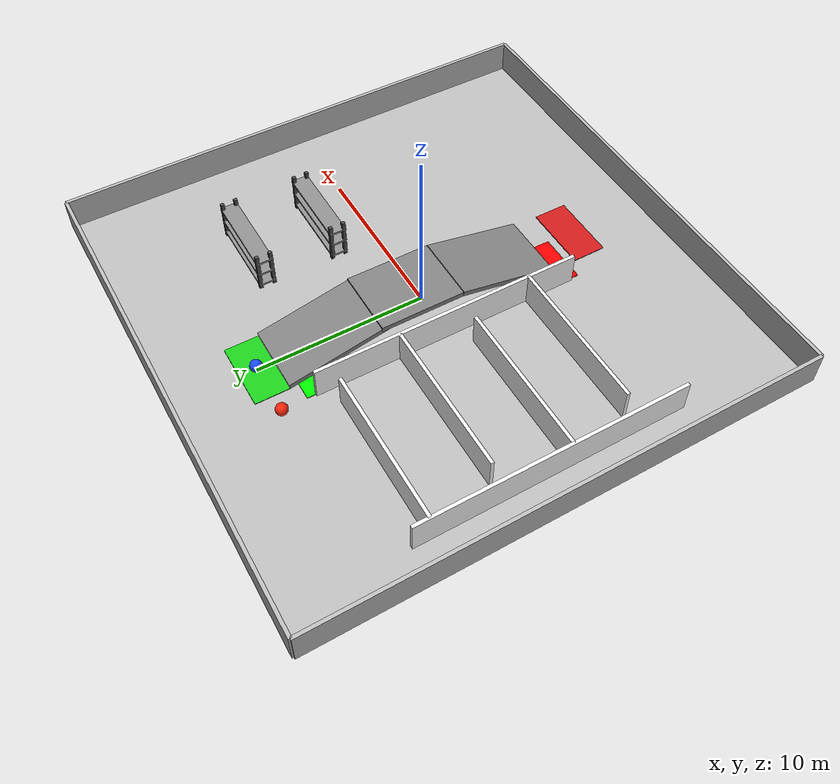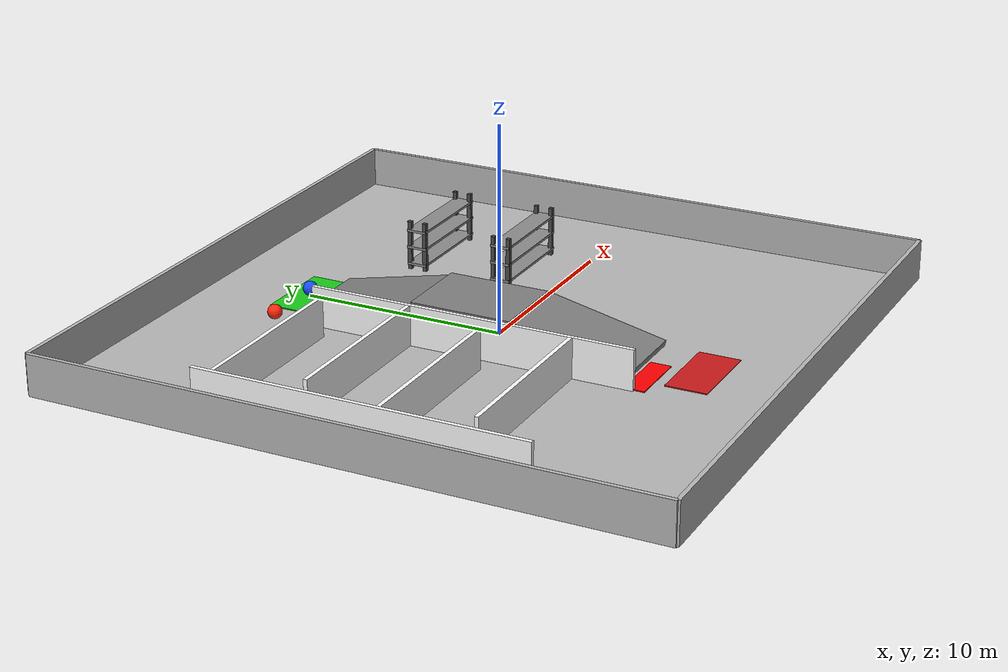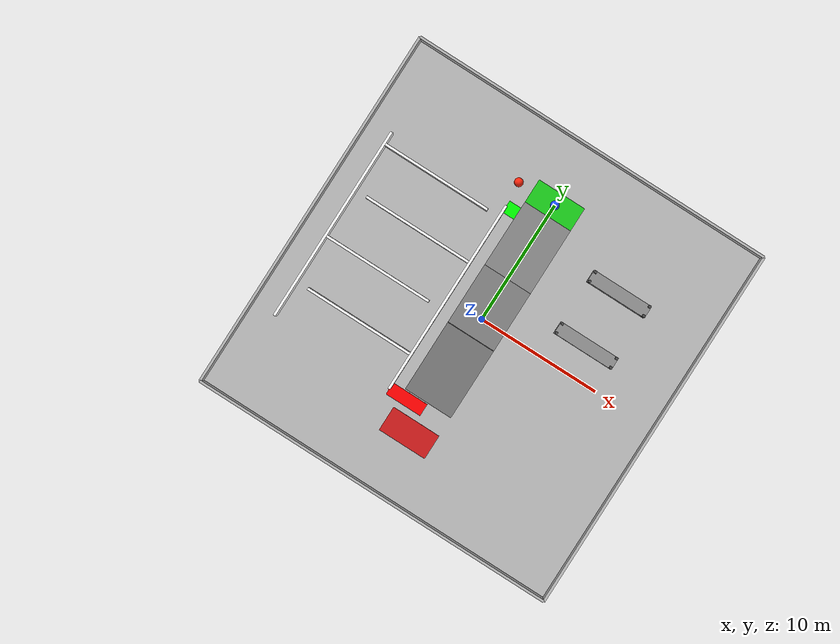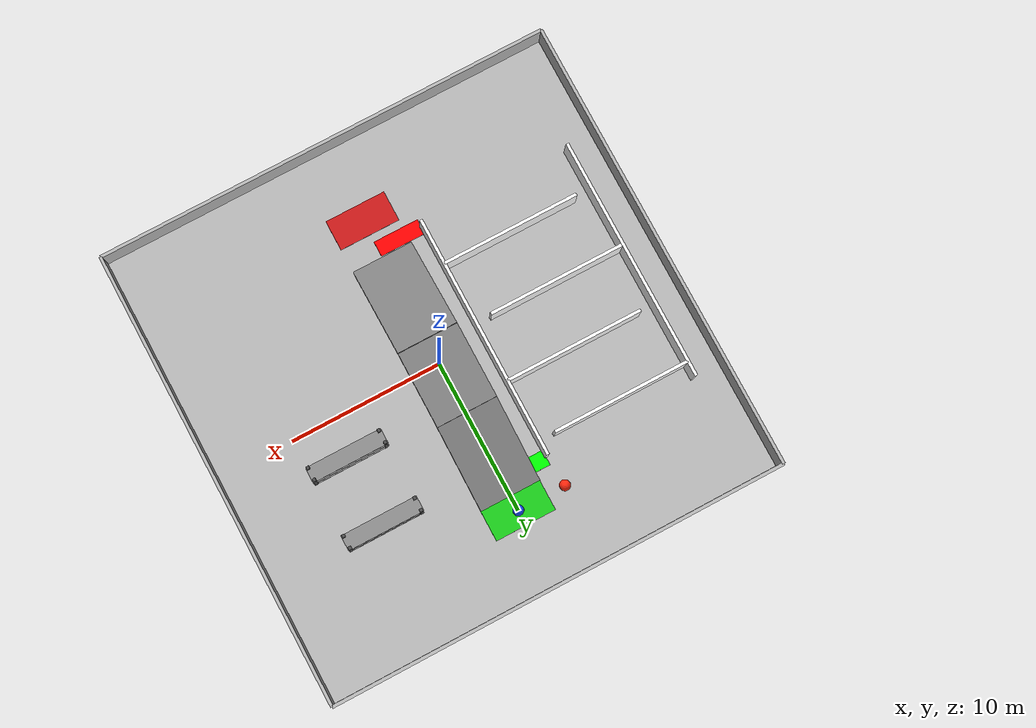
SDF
<?xml version="1.0" ?>
<sdf version="1.9">
  <world name="arena_30x30">

    <!-- Physics -->
    <physics name="1ms" type="ignored">
      <max_step_size>0.001</max_step_size>
      <real_time_factor>1</real_time_factor>
      <real_time_update_rate>1000</real_time_update_rate>
    </physics>

    <!-- Lighting -->
    <light name="sun" type="directional">
      <cast_shadows>true</cast_shadows>
      <pose>0 0 20 0 0 0</pose>
      <diffuse>0.8 0.8 0.8 1</diffuse>
      <specular>0.2 0.2 0.2 1</specular>
      <direction>-0.5 0.5 -1</direction>
    </light>

    <!-- Ground -->
    <model name="ground">
      <static>true</static>
      <link name="link">

        <collision name="collision">
          <geometry>
            <box>
              <size>30 30 0.1</size>
            </box>
          </geometry>
        </collision>

        <visual name="visual">
          <geometry>
            <box>
              <size>30 30 0.1</size>
            </box>
          </geometry>
        </visual>

      </link>
    </model>

    <!-- North wall -->
    <model name="wall_north">
      <static>true</static>
      <pose>0 15 1 0 0 0</pose>
      <link name="link">
        <collision name="collision">
          <geometry>
            <box>
              <size>30 0.2 2</size>
            </box>
          </geometry>
        </collision>
        <visual name="visual">
          <geometry>
            <box>
              <size>30 0.2 2</size>
            </box>
          </geometry>
        </visual>
      </link>
    </model>

    <!-- South wall -->
    <model name="wall_south">
      <static>true</static>
      <pose>0 -15 1 0 0 0</pose>
      <link name="link">
        <collision name="collision">
          <geometry>
            <box>
              <size>30 0.2 2</size>
            </box>
          </geometry>
        </collision>
        <visual name="visual">
          <geometry>
            <box>
              <size>30 0.2 2</size>
            </box>
          </geometry>
        </visual>
      </link>
    </model>

    <!-- East wall -->
    <model name="wall_east">
      <static>true</static>
      <pose>15 0 1 0 0 0</pose>
      <link name="link">
        <collision name="collision">
          <geometry>
            <box>
              <size>0.2 30 2</size>
            </box>
          </geometry>
        </collision>
        <visual name="visual">
          <geometry>
            <box>
              <size>0.2 30 2</size>
            </box>
          </geometry>
        </visual>
      </link>
    </model>

    <!-- West wall -->
    <model name="wall_west">
      <static>true</static>
      <pose>-15 0 1 0 0 0</pose>
      <link name="link">
        <collision name="collision">
          <geometry>
            <box>
              <size>0.2 30 2</size>
            </box>
          </geometry>
        </collision>
        <visual name="visual">
          <geometry>
            <box>
              <size>0.2 30 2</size>
            </box>
          </geometry>
        </visual>
      </link>
    </model>

  <!-- Position and rotation of the ramp -->
<!-- ROUTE 1: DIRECT NORTH → SOUTH 3D RAMP                    -->

<!-- POINT A / NORTH GROUND AREA -->
<model name="route1_point_A">
  <static>true</static>
  <pose>0 10 0.05 0 0 0</pose>

  <link name="link">
    <collision name="collision">
      <geometry>
        <box>
          <size>4.0 2.0 0.1</size>
        </box>
      </geometry>
    </collision>

    <visual name="visual">
      <geometry>
        <box>
          <size>4.0 2.0 0.1</size>
        </box>
      </geometry>
      <material>
        <ambient>0.1 0.8 0.1 1</ambient>
        <diffuse>0.1 0.8 0.1 1</diffuse>
      </material>
    </visual>
  </link>
</model>

<!-- ASCENDING RAMP                                            -->
<!-- NORTH → SOUTH                                             -->

<model name="route1_ascending_ramp">
  <static>true</static>

  <!-- x=0, y=6.5, elevated toward SOUTH -->
  <pose>0 6.0 0.85 -0.21337 0 0</pose>

  <link name="ramp_link">

    <collision name="collision">
      <geometry>
        <box>
          <size>4.0 6.139 0.3</size>
        </box>
      </geometry>
    </collision>

    <visual name="visual">
      <geometry>
        <box>
          <size>4.0 6.139 0.3</size>
        </box>
      </geometry>

      <material>
        <ambient>0.5 0.5 0.5 1</ambient>
        <diffuse>0.5 0.5 0.5 1</diffuse>
        <specular>0.2 0.2 0.2 1</specular>
      </material>
    </visual>

  </link>
</model>

<!-- ELEVATED STRAIGHT SECTION                                 -->

<model name="route1_elevated_platform">
  <static>true</static>

  <pose>0 1.0 1.5 0 0 0</pose>

  <link name="platform_link">

    <collision name="collision">
      <geometry>
        <box>
          <size>4.0 5.0 0.3</size>
        </box>
      </geometry>
    </collision>

    <visual name="visual">
      <geometry>
        <box>
          <size>4.0 5.0 0.3</size>
        </box>
      </geometry>

      <material>
        <ambient>0.5 0.5 0.5 1</ambient>
        <diffuse>0.5 0.5 0.5 1</diffuse>
        <specular>0.2 0.2 0.2 1</specular>
      </material>
    </visual>

  </link>
</model>

<!-- DESCENDING RAMP                                            -->

<model name="route1_descending_ramp">
  <static>true</static>

  <pose>0 -4.43 0.85 0.2187 0 0</pose>

  <link name="ramp_link">

    <collision name="collision">
      <geometry>
        <box>
          <size>4.0 6.0 0.3</size>
        </box>
      </geometry>
    </collision>

    <visual name="visual">
      <geometry>
        <box>
          <size>4.0 6.0 0.3</size>
        </box>
      </geometry>

      <material>
        <ambient>0.5 0.5 0.5 1</ambient>
        <diffuse>0.5 0.5 0.5 1</diffuse>
        <specular>0.2 0.2 0.2 1</specular>
      </material>
    </visual>

  </link>
</model>

<!-- POINT B / SOUTH GROUND AREA                               -->

<model name="route1_point_B">
  <static>true</static>
  <pose>0 -10 0.05 0 0 0</pose>

  <link name="link">

    <collision name="collision">
      <geometry>
        <box>
          <size>4.0 2.0 0.1</size>
        </box>
      </geometry>
    </collision>

    <visual name="visual">
      <geometry>
        <box>
          <size>4.0 2.0 0.1</size>
	</box>
      </geometry>

      <material>
        <ambient>0.8 0.1 0.1 1</ambient>
	<diffuse>0.8 0.1 0.1 1</diffuse>
      </material>
    </visual>

  </link>
</model>

<!-- MOVING BALL - ROUTE 1                                     -->

<model name="moving_ball_route1">
  <static>true</static>

  <pose>0 10 0.40 0 0 0</pose>

  <link name="ball_link">

    <!-- Ball -->
    <visual name="ball_visual">
      <geometry>
        <sphere>
          <radius>0.35</radius>
        </sphere>
      </geometry>

      <material>
        <ambient>0.1 0.3 1.0 1</ambient>
        <diffuse>0.1 0.3 1.0 1</diffuse>
      </material>
    </visual>

    <!-- Visible rolling marker -->
    <visual name="rolling_marker">
      <pose>0 0 0 0 1.5708 0</pose>

      <geometry>
        <cylinder>
          <radius>0.025</radius>
          <length>0.65</length>
        </cylinder>
      </geometry>

      <material>
        <ambient>1 1 1 1</ambient>
        <diffuse>1 1 1 1</diffuse>
      </material>
    </visual>

  </link>
</model>

<!-- ROUTE 2 : ZIG-ZAG GROUND FLOOR PATH                      -->
<!-- Completely flat driving surface: z = 0                   -->
<!-- A -> WEST -> ZIG-ZAG -> EAST -> B                        -->

<!-- GREEN START / NORTH ENTRY                                -->
<!-- Connects A to west-side corridor                         -->

<model name="zigzag_north_entry">
  <static>true</static>
  <pose>-1.5 8.0 0.05 0 0 0</pose>

  <link name="link">

    <collision name="collision">
      <geometry>
        <box>
          <size>3.0 1.0 0.1</size>
        </box>
      </geometry>
    </collision>

    <visual name="visual">
      <geometry>
        <box>
          <size>3.0 1.0 0.1</size>
        </box>
      </geometry>

      <material>
        <ambient>0 1 0 1</ambient>
        <diffuse>0 1 0 1</diffuse>
        <emissive>0 0.2 0 1</emissive>
      </material>
    </visual>

  </link>
</model>

<!-- ROUTE 2 WEST OUTER WALL                                   -->

<model name="zigzag_west_wall">
  <static>true</static>
  <pose>-13.0 0 1.0 0 0 0</pose>

  <link name="link">

    <collision name="collision">
      <geometry>
        <box>
          <size>0.2 16.0 2.0</size>
        </box>
      </geometry>
    </collision>

    <visual name="visual">
      <geometry>
        <box>
          <size>0.2 16.0 2.0</size>
        </box>
      </geometry>

      <material>
        <ambient>1 1 1 1</ambient>
        <diffuse>1 1 1 1</diffuse>
      </material>
    </visual>

  </link>
</model>

<!-- ROUTE 2 EAST OUTER WALL                                   -->

<model name="zigzag_east_wall">
  <static>true</static>
  <pose>-3.0 0 1.0 0 0 0</pose>

  <link name="link">

    <collision name="collision">
      <geometry>
        <box>
          <size>0.2 16.0 2.0</size>
        </box>
      </geometry>
    </collision>

    <visual name="visual">
      <geometry>
        <box>
          <size>0.2 16.0 2.0</size>
        </box>
      </geometry>

      <material>
        <ambient>1 1 1 1</ambient>
        <diffuse>1 1 1 1</diffuse>
      </material>
    </visual>

  </link>
</model>

<!-- BARRIER 1                                                 -->
<!-- GAP ON EAST                                               -->

<model name="zigzag_barrier_1">
  <static>true</static>
  <pose>-8.5 7.0 1.0 0 0 0</pose>

  <link name="link">

    <collision name="collision">
      <geometry>
        <box>
          <size>9.0 0.2 2.0</size>
        </box>
      </geometry>
    </collision>

    <visual name="visual">
      <geometry>
        <box>
          <size>9.0 0.2 2.0</size>
        </box>
      </geometry>

      <material>
        <ambient>1 1 1 1</ambient>
        <diffuse>1 1 1 1</diffuse>
      </material>
    </visual>

  </link>
</model>

<!-- BARRIER 2                                                 -->
<!-- GAP ON WEST                                               -->

<model name="zigzag_barrier_2">
  <static>true</static>
  <pose>-7.5 3.0 1.0 0 0 0</pose>

  <link name="link">

    <collision name="collision">
      <geometry>
        <box>
          <size>9.0 0.2 2.0</size>
        </box>
      </geometry>
    </collision>

    <visual name="visual">
      <geometry>
        <box>
          <size>9.0 0.2 2.0</size>
        </box>
      </geometry>

      <material>
        <ambient>1 1 1 1</ambient>
        <diffuse>1 1 1 1</diffuse>
      </material>
    </visual>

  </link>
</model>

<!-- BARRIER 3                                                 -->
<!-- GAP ON EAST                                               -->

<model name="zigzag_barrier_3">
  <static>true</static>
  <pose>-8.5 -1.0 1.0 0 0 0</pose>

  <link name="link">

    <collision name="collision">
      <geometry>
        <box>
          <size>9.0 0.2 2.0</size>
        </box>
      </geometry>
    </collision>

    <visual name="visual">
      <geometry>
        <box>
          <size>9.0 0.2 2.0</size>
        </box>
      </geometry>

      <material>
        <ambient>1 1 1 1</ambient>
        <diffuse>1 1 1 1</diffuse>
      </material>
    </visual>

  </link>
</model>

<!-- BARRIER 4                                                 -->
<!-- GAP ON WEST                                               -->

<model name="zigzag_barrier_4">
  <static>true</static>
  <pose>-7.5 -5.0 1.0 0 0 0</pose>

  <link name="link">

    <collision name="collision">
      <geometry>
        <box>
          <size>9.0 0.2 2.0</size>
        </box>
      </geometry>
    </collision>

    <visual name="visual">
      <geometry>
        <box>
          <size>9.0 0.2 2.0</size>
        </box>
      </geometry>

      <material>
        <ambient>1 1 1 1</ambient>
        <diffuse>1 1 1 1</diffuse>
      </material>
    </visual>

  </link>
</model>

<!-- SOUTH EXIT                                                -->
<!-- Connects west corridor back to B                         -->
<!-- RED                                                        -->

<model name="zigzag_south_exit">
  <static>true</static>
  <pose>-1.5 -8.0 0.05 0 0 0</pose>

  <link name="link">

    <collision name="collision">
      <geometry>
        <box>
          <size>3.0 1.0 0.1</size>
        </box>
      </geometry>
    </collision>

    <visual name="visual">
      <geometry>
        <box>
          <size>3.0 1.0 0.1</size>
        </box>
      </geometry>

      <material>
        <ambient>1 0 0 1</ambient>
        <diffuse>1 0 0 1</diffuse>
        <emissive>0.2 0 0 1</emissive>
      </material>
    </visual>

  </link>
</model>

<!-- MOVING BALL - ROUTE 2 ZIG-ZAG                            -->

<model name="moving_ball_route2">
  <static>true</static>

  <pose>-3.17 10.0 0.40 0 0 0</pose>

  <link name="ball_link">

    <visual name="ball_visual">
      <geometry>
        <sphere>
          <radius>0.35</radius>
        </sphere>
      </geometry>

      <material>
        <ambient>1.0 0.15 0.05 1</ambient>
        <diffuse>1.0 0.15 0.05 1</diffuse>
      </material>
    </visual>

    <visual name="rolling_marker">
      <pose>0 0 0 0 1.5708 0</pose>

      <geometry>
        <cylinder>
          <radius>0.025</radius>
          <length>0.65</length>
        </cylinder>
      </geometry>

      <material>
        <ambient>1 1 1 1</ambient>
        <diffuse>1 1 1 1</diffuse>
      </material>
    </visual>

  </link>
</model>

<!-- WAREHOUSE STORAGE RACKS                                   -->
<!-- Open industrial-style shelving                            -->

<!-- RACK 1                                                    -->

<model name="warehouse_rack_1">
  <static>true</static>
  <pose>7.5 7.0 0 0 0 0</pose>

  <!-- LEFT FRONT POST -->
  <link name="post_1">
    <pose>-2.35 -0.40 1.25 0 0 0</pose>
    <collision name="collision">
      <geometry>
        <box>
          <size>0.20 0.20 2.50</size>
        </box>
      </geometry>
    </collision>
    <visual name="visual">
      <geometry>
        <box>
          <size>0.20 0.20 2.50</size>
        </box>
      </geometry>
      <material>
        <ambient>0.30 0.30 0.30 1</ambient>
        <diffuse>0.30 0.30 0.30 1</diffuse>
      </material>
    </visual>
  </link>

  <!-- RIGHT FRONT POST -->
  <link name="post_2">
    <pose>2.35 -0.40 1.25 0 0 0</pose>
    <collision name="collision">
      <geometry>
        <box>
          <size>0.20 0.20 2.50</size>
        </box>
      </geometry>
    </collision>
    <visual name="visual">
      <geometry>
        <box>
          <size>0.20 0.20 2.50</size>
        </box>
      </geometry>
      <material>
        <ambient>0.30 0.30 0.30 1</ambient>
        <diffuse>0.30 0.30 0.30 1</diffuse>
      </material>
    </visual>
  </link>

  <!-- LEFT BACK POST -->
  <link name="post_3">
    <pose>-2.35 0.40 1.25 0 0 0</pose>
    <collision name="collision">
      <geometry>
        <box>
          <size>0.20 0.20 2.50</size>
        </box>
      </geometry>
    </collision>
    <visual name="visual">
      <geometry>
        <box>
          <size>0.20 0.20 2.50</size>
        </box>
      </geometry>
      <material>
        <ambient>0.30 0.30 0.30 1</ambient>
        <diffuse>0.30 0.30 0.30 1</diffuse>
      </material>
    </visual>
  </link>

  <!-- RIGHT BACK POST -->
  <link name="post_4">
    <pose>2.35 0.40 1.25 0 0 0</pose>
    <collision name="collision">
      <geometry>
        <box>
          <size>0.20 0.20 2.50</size>
        </box>
      </geometry>
    </collision>
    <visual name="visual">
      <geometry>
        <box>
          <size>0.20 0.20 2.50</size>
        </box>
      </geometry>
      <material>
        <ambient>0.30 0.30 0.30 1</ambient>
        <diffuse>0.30 0.30 0.30 1</diffuse>
      </material>
    </visual>
  </link>

  <!-- LOWER SHELF -->
  <link name="shelf_1">
    <pose>0 0 0.35 0 0 0</pose>
    <collision name="collision">
      <geometry>
        <box>
          <size>5.0 1.0 0.12</size>
        </box>
      </geometry>
    </collision>
    <visual name="visual">
      <geometry>
        <box>
          <size>5.0 1.0 0.12</size>
        </box>
      </geometry>
      <material>
        <ambient>0.55 0.55 0.55 1</ambient>
        <diffuse>0.55 0.55 0.55 1</diffuse>
      </material>
    </visual>
  </link>

  <!-- MIDDLE SHELF -->
  <link name="shelf_2">
    <pose>0 0 1.20 0 0 0</pose>
    <collision name="collision">
      <geometry>
        <box>
          <size>5.0 1.0 0.12</size>
        </box>
      </geometry>
    </collision>
    <visual name="visual">
      <geometry>
        <box>
          <size>5.0 1.0 0.12</size>
        </box>
      </geometry>
      <material>
        <ambient>0.55 0.55 0.55 1</ambient>
        <diffuse>0.55 0.55 0.55 1</diffuse>
      </material>
    </visual>
  </link>

  <!-- UPPER SHELF -->
  <link name="shelf_3">
    <pose>0 0 2.05 0 0 0</pose>
    <collision name="collision">
      <geometry>
        <box>
          <size>5.0 1.0 0.12</size>
        </box>
      </geometry>
    </collision>
    <visual name="visual">
      <geometry>
        <box>
          <size>5.0 1.0 0.12</size>
        </box>
      </geometry>
      <material>
        <ambient>0.55 0.55 0.55 1</ambient>
        <diffuse>0.55 0.55 0.55 1</diffuse>
      </material>
    </visual>
  </link>

</model>

<!-- RACK 2                                                    -->

<model name="warehouse_rack_2">
  <static>true</static>
  <pose>7.5 2.5 0 0 0 0</pose>

  <link name="post_1">
    <pose>-2.35 -0.40 1.25 0 0 0</pose>
    <collision name="collision">
      <geometry><box><size>0.20 0.20 2.50</size></box></geometry>
    </collision>
    <visual name="visual">
      <geometry>
        <box>
          <size>0.20 0.20 2.50</size>
        </box>
      </geometry>
      <material>
        <ambient>0.30 0.30 0.30 1</ambient>
        <diffuse>0.30 0.30 0.30 1</diffuse>
      </material>
    </visual>
  </link>

  <link name="post_2">
    <pose>2.35 -0.40 1.25 0 0 0</pose>
    <collision name="collision">
      <geometry><box><size>0.20 0.20 2.50</size></box></geometry>
    </collision>
    <visual name="visual">
      <geometry>
        <box>
          <size>0.20 0.20 2.50</size>
        </box>
      </geometry>
      <material>
        <ambient>0.30 0.30 0.30 1</ambient>
        <diffuse>0.30 0.30 0.30 1</diffuse>
      </material>
    </visual>
  </link>

  <link name="post_3">
    <pose>-2.35 0.40 1.25 0 0 0</pose>
    <collision name="collision">
      <geometry><box><size>0.20 0.20 2.50</size></box></geometry>
    </collision>
    <visual name="visual">
      <geometry>
        <box>
          <size>0.20 0.20 2.50</size>
        </box>
      </geometry>
      <material>
        <ambient>0.30 0.30 0.30 1</ambient>
        <diffuse>0.30 0.30 0.30 1</diffuse>
      </material>
    </visual>
  </link>

  <link name="post_4">
    <pose>2.35 0.40 1.25 0 0 0</pose>
    <collision name="collision">
      <geometry><box><size>0.20 0.20 2.50</size></box></geometry>
    </collision>
    <visual name="visual">
      <geometry>
        <box>
          <size>0.20 0.20 2.50</size>
        </box>
      </geometry>
      <material>
        <ambient>0.30 0.30 0.30 1</ambient>
        <diffuse>0.30 0.30 0.30 1</diffuse>
      </material>
    </visual>
  </link>

  <link name="shelf_1">
    <pose>0 0 0.35 0 0 0</pose>
    <collision name="collision">
      <geometry><box><size>5.0 1.0 0.12</size></box></geometry>
    </collision>
    <visual name="visual">
      <geometry>
        <box>
          <size>5.0 1.0 0.12</size>
        </box>
      </geometry>
      <material>
        <ambient>0.55 0.55 0.55 1</ambient>
        <diffuse>0.55 0.55 0.55 1</diffuse>
      </material>
    </visual>
  </link>

  <link name="shelf_2">
    <pose>0 0 1.20 0 0 0</pose>
    <collision name="collision">
      <geometry><box><size>5.0 1.0 0.12</size></box></geometry>
    </collision>
    <visual name="visual">
      <geometry>
        <box>
          <size>5.0 1.0 0.12</size>
        </box>
      </geometry>
      <material>
        <ambient>0.55 0.55 0.55 1</ambient>
        <diffuse>0.55 0.55 0.55 1</diffuse>
      </material>
    </visual>
  </link>

  <link name="shelf_3">
    <pose>0 0 2.05 0 0 0</pose>
    <collision name="collision">
      <geometry><box><size>5.0 1.0 0.12</size></box></geometry>
    </collision>
    <visual name="visual">
      <geometry>
        <box>
          <size>5.0 1.0 0.12</size>
        </box>
      </geometry>
      <material>
        <ambient>0.55 0.55 0.55 1</ambient>
        <diffuse>0.55 0.55 0.55 1</diffuse>
      </material>
    </visual>
  </link>
</model>

  </world>
</sdf>
